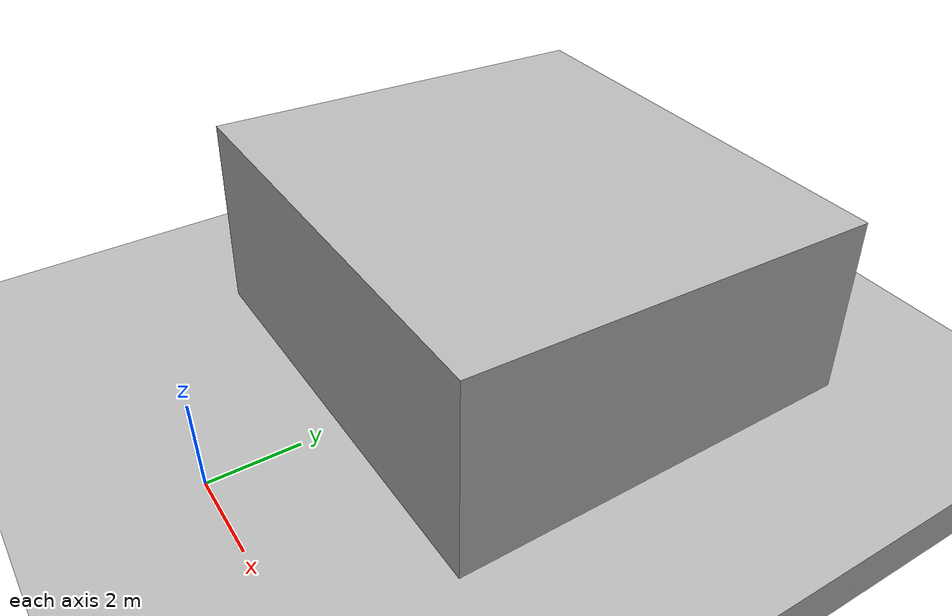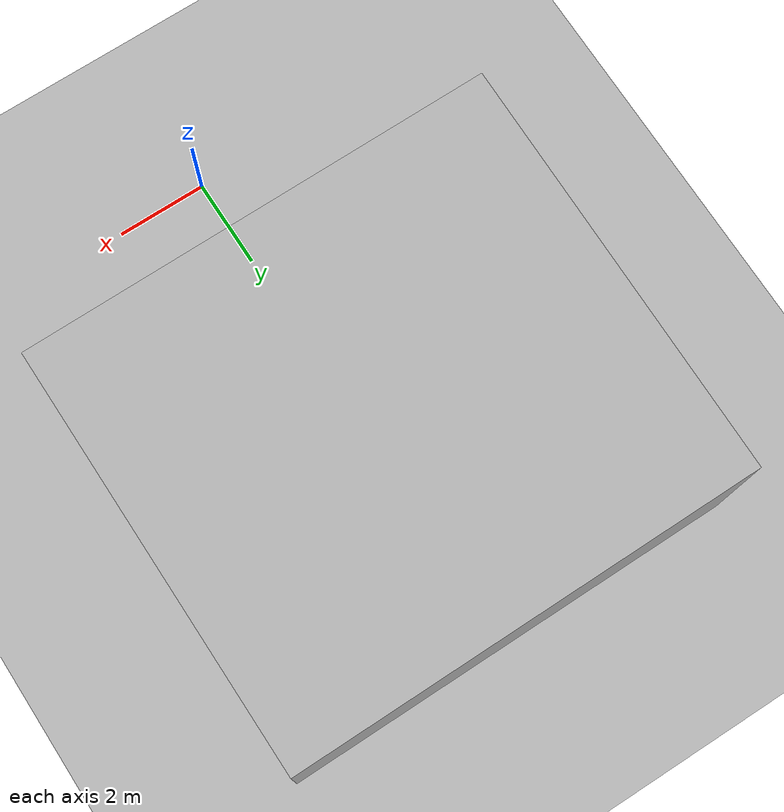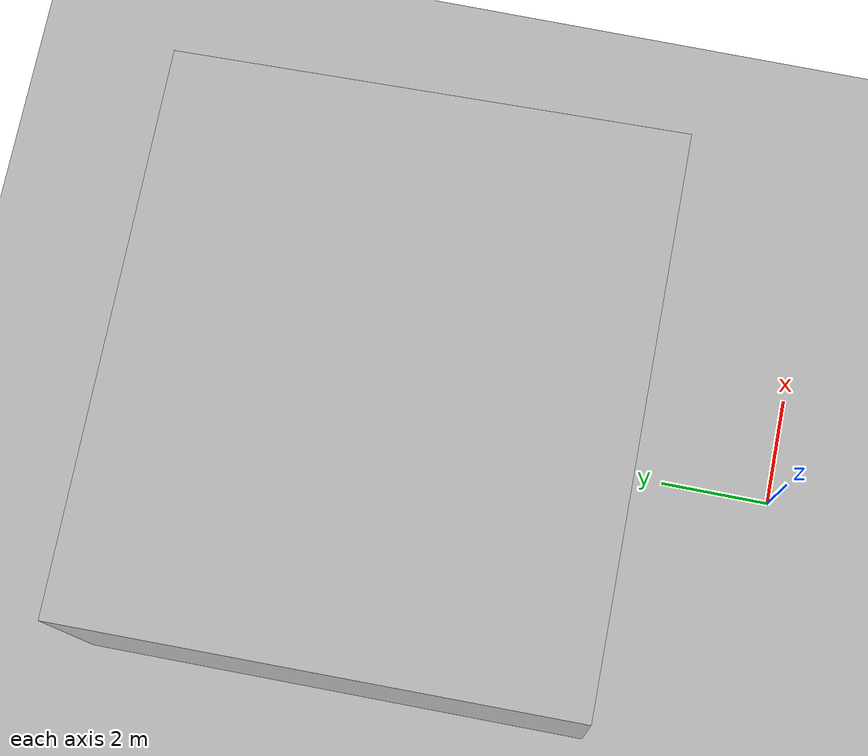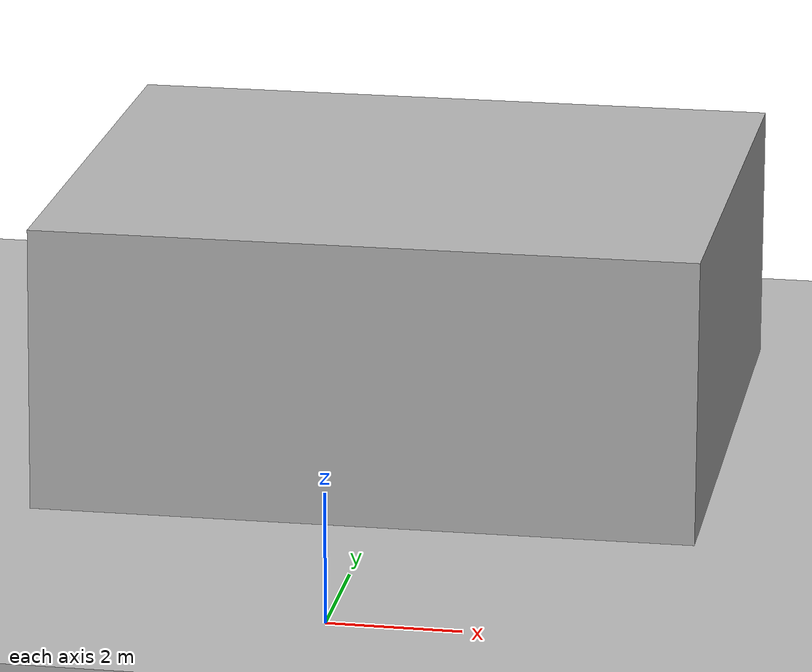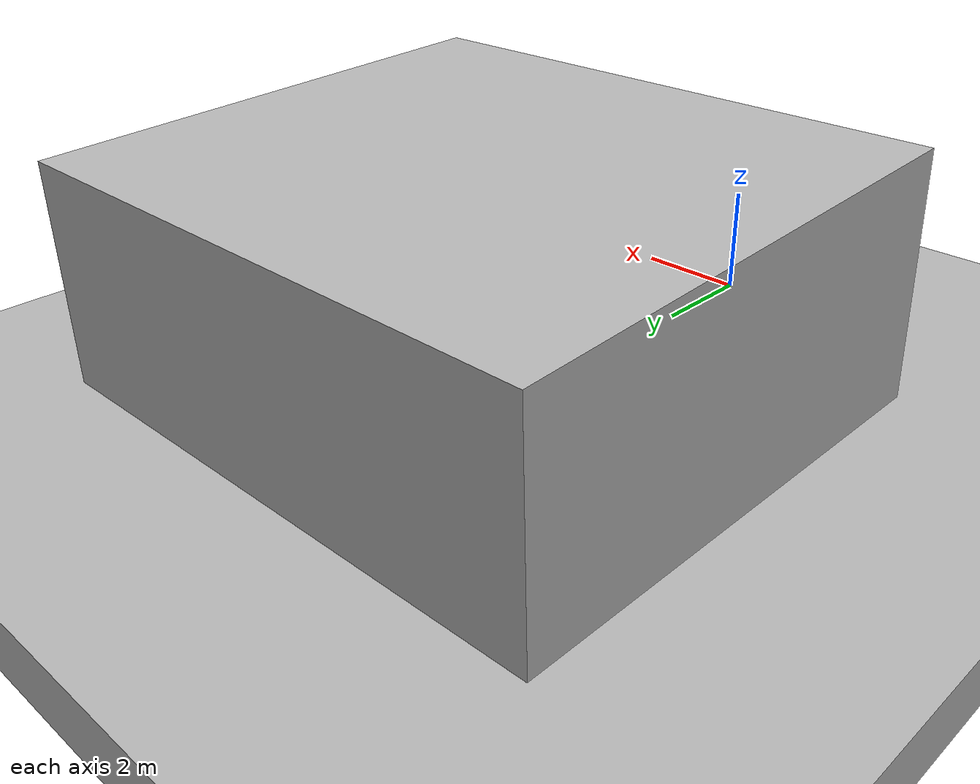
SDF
<sdf version="1.6">
 <world name="default">
  <scene>
   <sky><clouds><speed>12</speed></clouds></sky>
   <ambient>0.4 0.4 0.4 1</ambient>
   <background>0.7 0.7 0.7 1</background>
   <shadows>1</shadows>
  </scene>
  <gravity>0 0 -9.8066</gravity>
  <magnetic_field>6e-06 2.3e-05 -4.2e-05</magnetic_field>
  <physics name="default_physics" default="0" type="ode">
   <ode>
    <solver>
     <type>quick</type>
     <iters>10</iters>
     <sor>1</sor>
     <use_dynamic_moi_rescaling>0</use_dynamic_moi_rescaling>
    </solver>
    <constraints>
     <cfm>0</cfm>
     <erp>0.2</erp>
     <contact_max_correcting_vel>100</contact_max_correcting_vel>
     <contact_surface_layer>0.001</contact_surface_layer>
    </constraints>
   </ode>
   <max_step_size>0.004</max_step_size>
   <real_time_factor>1</real_time_factor>
   <real_time_update_rate>250</real_time_update_rate>
  </physics>
  <light name="sun" type="directional">
   <pose>0 0 10 0 -0 0</pose>
   <diffuse>0.8 0.8 0.8 1</diffuse>
   <specular>0.2 0.2 0.2 1</specular>
   <attenuation>
    <range>1000</range>
    <constant>0.9</constant>
    <linear>0.01</linear>
    <quadratic>0.001</quadratic>
   </attenuation>
   <direction>-0.5 0.1 -0.9</direction>
  </light>
  <model name="ground_plane_1">
   <static>1</static>
   <link name="link">
    <collision name="collision">
     <geometry><plane><normal>0 0 1</normal><size>1000 1000</size></plane></geometry>
     <surface><friction><ode><mu>100</mu><mu2>50</mu2></ode></friction></surface>
    </collision>
    <visual name="visual">
     <cast_shadows>0</cast_shadows>
     <geometry><plane><normal>0 0 1</normal><size>1000 1000</size></plane></geometry>
     <material>
      <script>
       <uri>model://HANNAS_ground_plane/materials/scripts/HANNAS_ground_plane.material</uri>
       <uri>model://HANNAS_ground_plane/materials/textures</uri>
       <name>HANNASGroundPlane/Image</name>
      </script>
     </material>
    </visual>
   </link>
  </model>
  <model name="ground_plane_2">
   <static>1</static>
   <link name="link">
    <collision name="collision">
     <geometry><plane><normal>0 0 1</normal><size>1000 1000</size></plane></geometry>
     <surface><friction><ode><mu>100</mu><mu2>50</mu2></ode></friction></surface>
    </collision>
    <visual name="visual">
     <cast_shadows>0</cast_shadows>
     <geometry><plane><normal>0 0 1</normal><size>1000 1000</size></plane></geometry>
     <material>
      <script>
       <uri>model://HANNAS_ground_plane/materials/scripts/HANNAS_ground_plane.material</uri>
       <uri>model://HANNAS_ground_plane/materials/textures</uri>
       <name>HANNASGroundPlane/Image</name>
      </script>
     </material>
    </visual>
   </link>
   <pose>100 0 0 0 -0 0</pose>
  </model>
  <model name="building_1">
   <static>0</static>
   <pose>0.026116 2.79042 2.60054 -1.61269 -7e-06 0.006239</pose>
   <link name="link">
    <pose>0 0 4.5 0 -0 0</pose>
    <collision name="collision"><geometry><box><size>10 4.4152 9</size></box></geometry></collision>
    <visual name="visual">
     <cast_shadows>0</cast_shadows>
     <geometry><box><size>10 4.4152 9</size></box></geometry>
     <material>
      <script>
       <uri>model://HANNAS_wall/materials/scripts</uri>
       <uri>model://HANNAS_wall/materials/textures</uri>
       <name>vrc/HANNAS_wall</name>
      </script>
     </material>
    </visual>
    <inertial>
     <inertia><ixx>1</ixx><ixy>0</ixy><ixz>0</ixz><iyy>1</iyy><iyz>0</iyz><izz>1</izz></inertia>
     <mass>1</mass>
    </inertial>
   </link>
  </model>
  <atmosphere type="adiabatic"/>
  <audio><device>default</device></audio>
  <spherical_coordinates>
   <surface_model>EARTH_WGS84</surface_model>
   <latitude_deg>0</latitude_deg>
   <longitude_deg>0</longitude_deg>
   <elevation>0</elevation>
   <heading_deg>0</heading_deg>
  </spherical_coordinates>
 </world>
</sdf>
